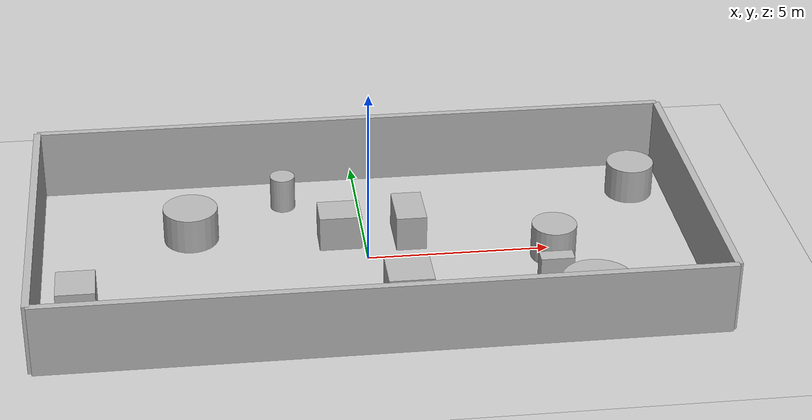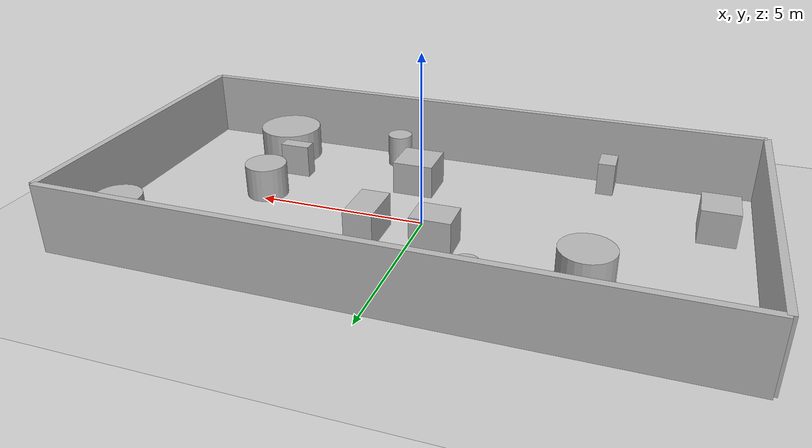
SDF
<?xml version="1.0"?>
<sdf version="1.6">
  <world name="env_0">

    <include><uri>model://ground_plane</uri></include>
    <include><uri>model://sun</uri></include>

    <!-- WALLS -->
    <model name="wall_north"><static>true</static><pose>0 4.541304069136208 1 0 0 0</pose>
      <link name="link"><collision name="collision">
        <geometry><box><size>18.044265615655092 0.2 2</size></box></geometry>
      </collision><visual name="visual">
        <geometry><box><size>18.044265615655092 0.2 2</size></box></geometry>
      </visual></link>
    </model>

    <model name="wall_south"><static>true</static><pose>0 -4.541304069136208 1 0 0 0</pose>
      <link name="link"><collision name="collision">
        <geometry><box><size>18.044265615655092 0.2 2</size></box></geometry>
      </collision><visual name="visual">
        <geometry><box><size>18.044265615655092 0.2 2</size></box></geometry>
      </visual></link>
    </model>

    <model name="wall_east"><static>true</static><pose>9.022132807827546 0 1 0 0 1.57</pose>
      <link name="link"><collision name="collision">
        <geometry><box><size>9.082608138272416 0.2 2</size></box></geometry>
      </collision><visual name="visual">
        <geometry><box><size>9.082608138272416 0.2 2</size></box></geometry>
      </visual></link>
    </model>

    <model name="wall_west"><static>true</static><pose>-9.022132807827546 0 1 0 0 1.57</pose>
      <link name="link"><collision name="collision">
        <geometry><box><size>9.082608138272416 0.2 2</size></box></geometry>
      </collision><visual name="visual">
        <geometry><box><size>9.082608138272416 0.2 2</size></box></geometry>
      </visual></link>
    </model>

    <!-- SENSOR -->

    <model name="lidar_sensor">
      <static>true</static>
      <pose>-5.385735760021845 -2.386730411996912 0.4 0 0 0</pose>
      <link name="link">
        <sensor name="lidar" type="ray">
          <pose>0 0 0 0 0 0</pose>
          <visualize>true</visualize>
          <always_on>true</always_on>
          <update_rate>10</update_rate>
          <ray>
            <scan><horizontal>
              <samples>180</samples>
              <resolution>1</resolution>
              <min_angle>-3.14159</min_angle>
              <max_angle>3.14159</max_angle>
            </horizontal></scan>
            <range><min>0.15</min><max>20.0</max><resolution>0.01</resolution></range>
          </ray>
          <plugin name="lidar_plugin" filename="liblidar_plugin.so"/>
        </sensor>
      </link>
    </model>

    <!-- OBSTACLES -->

    <model name="obstacle_0">
      <static>true</static>
      <pose>1.2381266702415452 1.032105607559748 0.5 0 0 0</pose>
      <link name="link">
        <collision name="collision">
          <geometry><box><size>0.84 1.43 1.0</size></box></geometry>
        </collision>
        <visual name="visual">
          <geometry><box><size>0.84 1.43 1.0</size></box></geometry>
        </visual>
      </link>
    </model>

    <model name="obstacle_1">
      <static>true</static>
      <pose>-7.921244205720772 -1.9591045675152197 0.5 0 0 0</pose>
      <link name="link">
        <collision name="collision">
          <geometry><box><size>1.05 1.17 1.0</size></box></geometry>
        </collision>
        <visual name="visual">
          <geometry><box><size>1.05 1.17 1.0</size></box></geometry>
        </visual>
      </link>
    </model>

    <model name="obstacle_2">
      <static>true</static>
      <pose>-4.808112014188815 1.562354994991928 0.5 0 0 0</pose>
      <link name="link">
        <collision name="collision">
          <geometry><cylinder><radius>0.76</radius><length>1.0</length></cylinder></geometry>
        </collision>
        <visual name="visual">
          <geometry><cylinder><radius>0.76</radius><length>1.0</length></cylinder></geometry>
        </visual>
      </link>
    </model>

    <model name="obstacle_3">
      <static>true</static>
      <pose>4.834266501922796 -1.9986027250892255 0.5 0 0 0</pose>
      <link name="link">
        <collision name="collision">
          <geometry><box><size>0.91 0.41 1.0</size></box></geometry>
        </collision>
        <visual name="visual">
          <geometry><box><size>0.91 0.41 1.0</size></box></geometry>
        </visual>
      </link>
    </model>

    <model name="obstacle_4">
      <static>true</static>
      <pose>7.922375740185203 2.8213285377386725 0.5 0 0 0</pose>
      <link name="link">
        <collision name="collision">
          <geometry><cylinder><radius>0.67</radius><length>1.0</length></cylinder></geometry>
        </collision>
        <visual name="visual">
          <geometry><cylinder><radius>0.67</radius><length>1.0</length></cylinder></geometry>
        </visual>
      </link>
    </model>

    <model name="obstacle_5">
      <static>true</static>
      <pose>5.690893599785973 -3.274694836381383 0.5 0 0 0</pose>
      <link name="link">
        <collision name="collision">
          <geometry><cylinder><radius>0.96</radius><length>1.0</length></cylinder></geometry>
        </collision>
        <visual name="visual">
          <geometry><cylinder><radius>0.96</radius><length>1.0</length></cylinder></geometry>
        </visual>
      </link>
    </model>

    <model name="obstacle_6">
      <static>true</static>
      <pose>5.077875891572397 -0.38276747528636923 0.5 0 0 0</pose>
      <link name="link">
        <collision name="collision">
          <geometry><cylinder><radius>0.62</radius><length>1.0</length></cylinder></geometry>
        </collision>
        <visual name="visual">
          <geometry><cylinder><radius>0.62</radius><length>1.0</length></cylinder></geometry>
        </visual>
      </link>
    </model>

    <model name="obstacle_7">
      <static>true</static>
      <pose>-4.680301122643943 -3.888643198303933 0.5 0 0 0</pose>
      <link name="link">
        <collision name="collision">
          <geometry><box><size>0.51 0.79 1.0</size></box></geometry>
        </collision>
        <visual name="visual">
          <geometry><box><size>0.51 0.79 1.0</size></box></geometry>
        </visual>
      </link>
    </model>

    <model name="obstacle_8">
      <static>true</static>
      <pose>0.8364127241590698 -2.211712205032022 0.5 0 0 0</pose>
      <link name="link">
        <collision name="collision">
          <geometry><box><size>1.22 1.22 1.0</size></box></geometry>
        </collision>
        <visual name="visual">
          <geometry><box><size>1.22 1.22 1.0</size></box></geometry>
        </visual>
      </link>
    </model>

    <model name="obstacle_9">
      <static>true</static>
      <pose>1.9946993505456945 -3.75213443840147 0.5 0 0 0</pose>
      <link name="link">
        <collision name="collision">
          <geometry><cylinder><radius>0.38</radius><length>1.0</length></cylinder></geometry>
        </collision>
        <visual name="visual">
          <geometry><cylinder><radius>0.38</radius><length>1.0</length></cylinder></geometry>
        </visual>
      </link>
    </model>

    <model name="obstacle_10">
      <static>true</static>
      <pose>-0.70712386887599 1.0094412165643893 0.5 0 0 0</pose>
      <link name="link">
        <collision name="collision">
          <geometry><box><size>1.17 0.96 1.0</size></box></geometry>
        </collision>
        <visual name="visual">
          <geometry><box><size>1.17 0.96 1.0</size></box></geometry>
        </visual>
      </link>
    </model>

    <model name="obstacle_11">
      <static>true</static>
      <pose>-2.1368409672047814 3.083358962560057 0.5 0 0 0</pose>
      <link name="link">
        <collision name="collision">
          <geometry><cylinder><radius>0.35</radius><length>1.0</length></cylinder></geometry>
        </collision>
        <visual name="visual">
          <geometry><cylinder><radius>0.35</radius><length>1.0</length></cylinder></geometry>
        </visual>
      </link>
    </model>

  </world>
</sdf>
